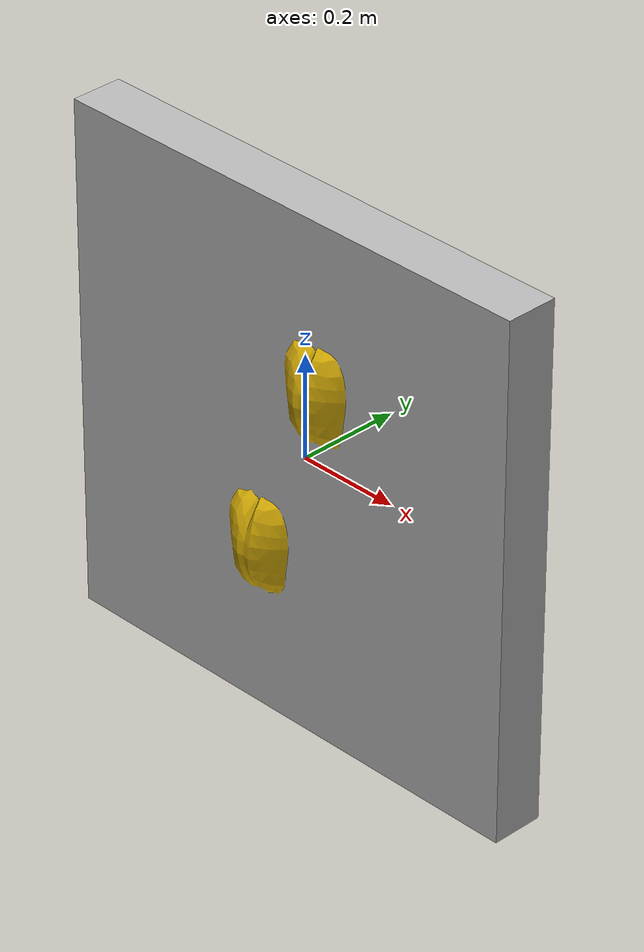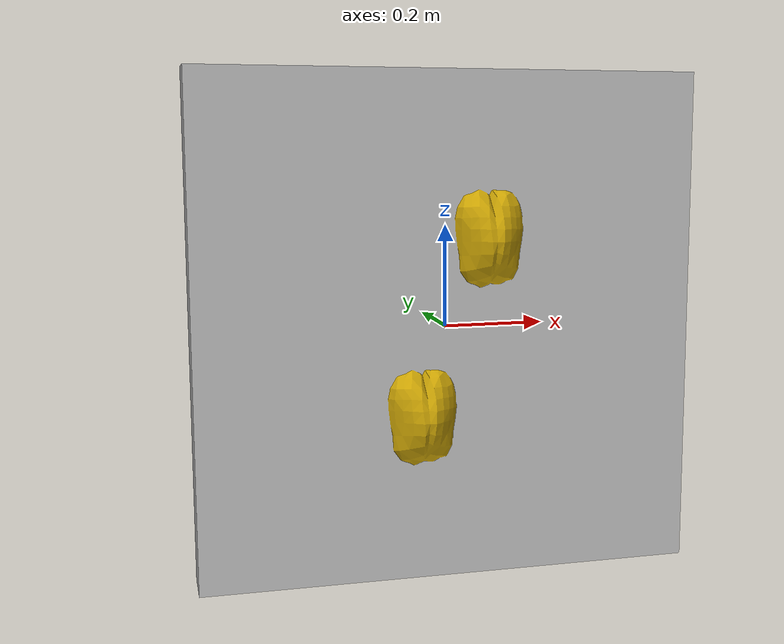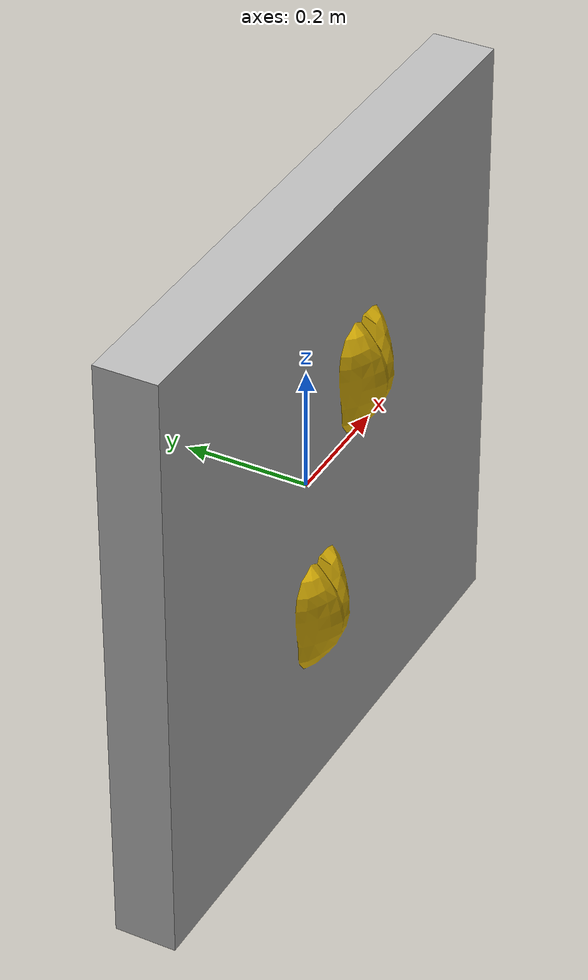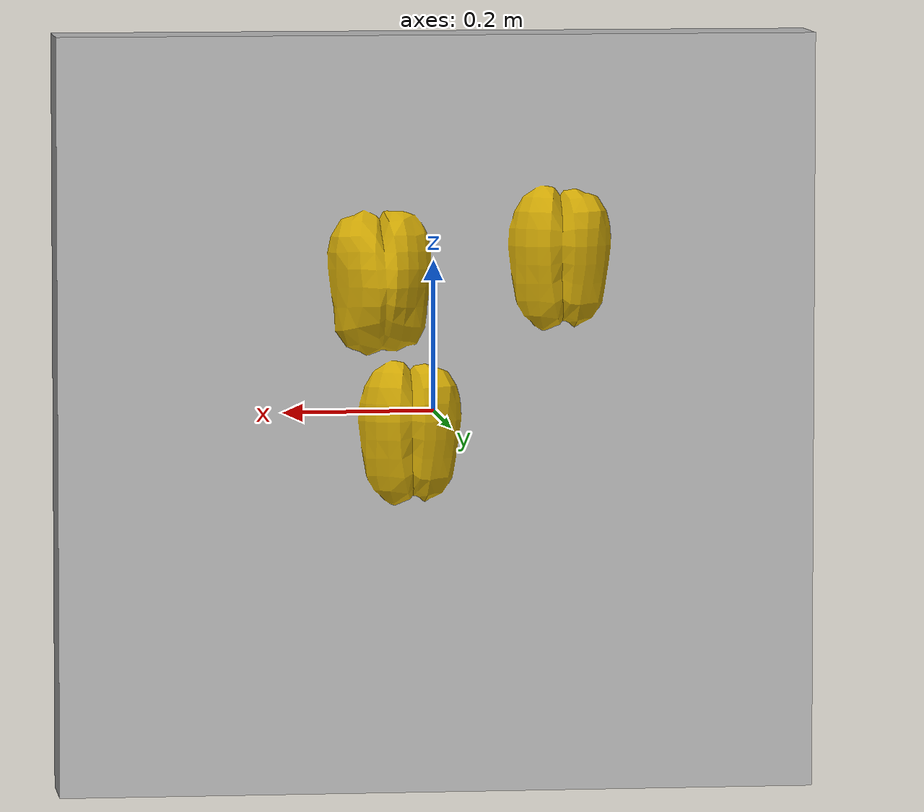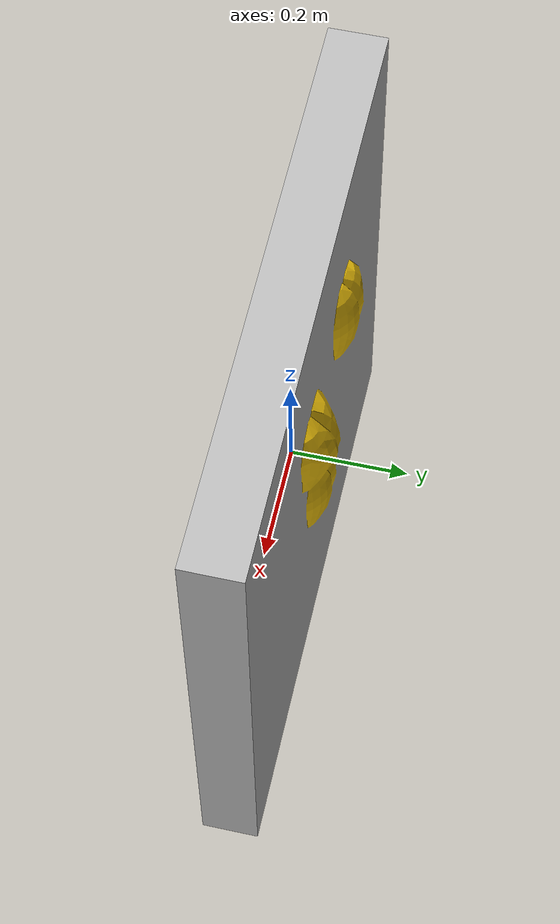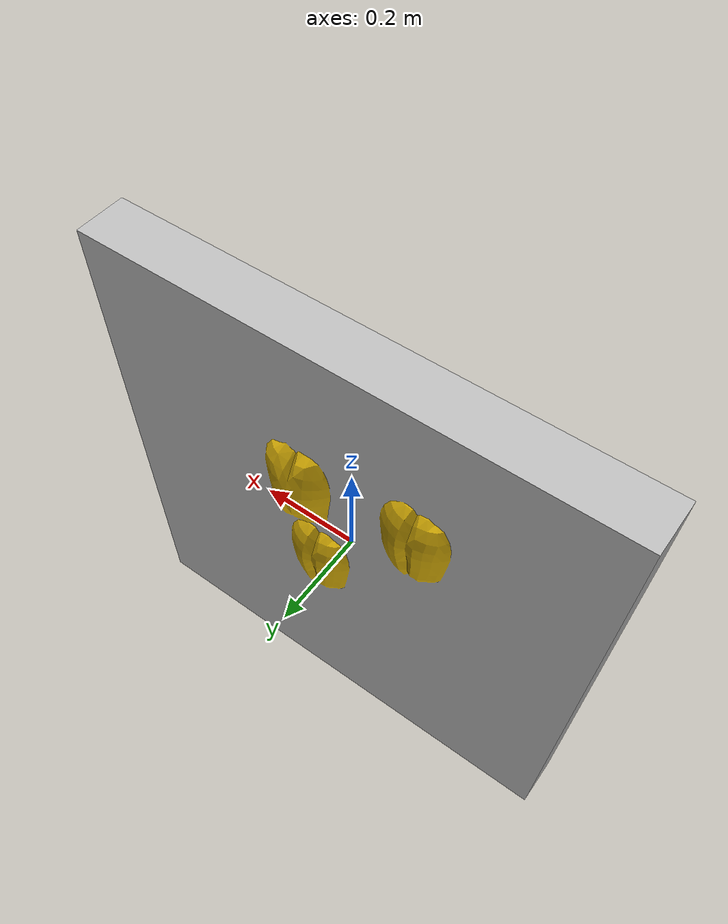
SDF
<?xml version='1.0'?>
<sdf version="1.6">
  <model name="pepper_7">
    <static>true</static>
    <link name="pepper_7">
      <collision name="collision">
        <geometry>
          <box>
            <size>1 1 1</size>
          </box>
        </geometry>
      </collision>
      <visual name="visual">
        <geometry>
          <mesh>
            <scale>1 1 1</scale>
            <uri>model://icuas24/pepper_7.dae</uri>
          </mesh>
        </geometry>
      </visual>
    </link>
  </model>
</sdf>
